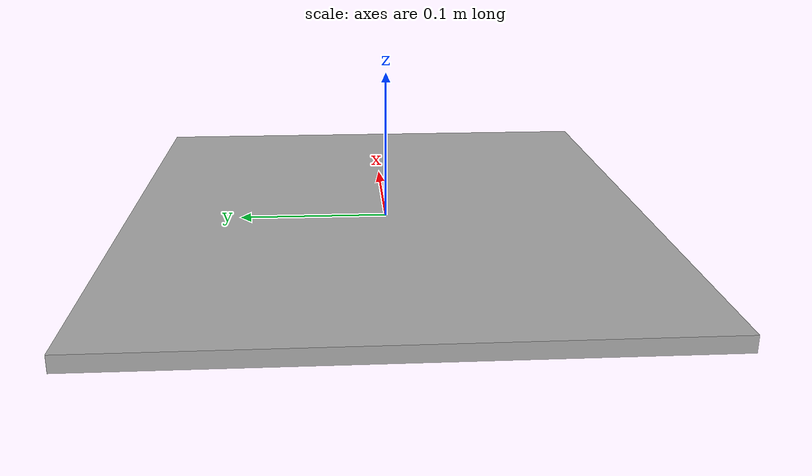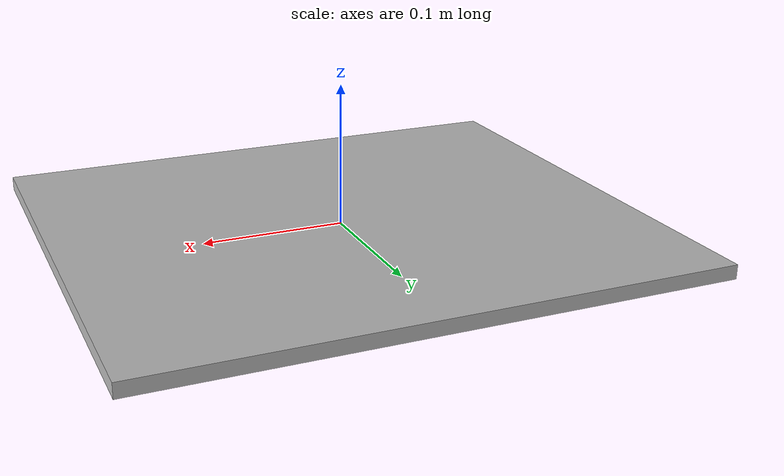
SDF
<?xml version='1.0'?>
<sdf version='1.6'>
  <model name='apriltag_36h11_00004'>
    <link name='main'>
      <visual name='main_Visual'>
        <geometry>
          <box>
          <size>0.4 0.35 0.01</size>
          </box>
        </geometry>
           <material>
          <script>
            <uri>model://apriltag_36h11_00004/materials/scripts</uri>
            <uri>model://apriltag_36h11_00004/materials/textures</uri>
            <name>apriltag_36h11_00004</name>
          </script>
        </material>
      </visual>
      <collision name="collision">
        <geometry>
          <box><size>0.4 0.35 0.01</size></box>
        </geometry>
      </collision>
     </link>
    <static>1</static>
  </model>
</sdf>
